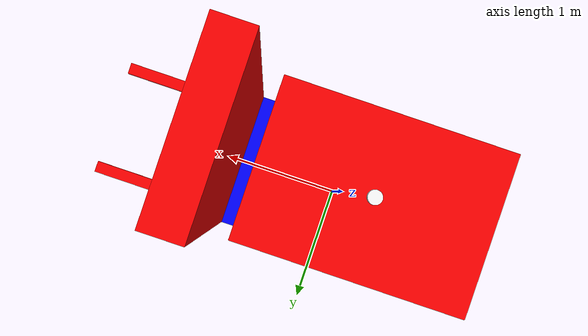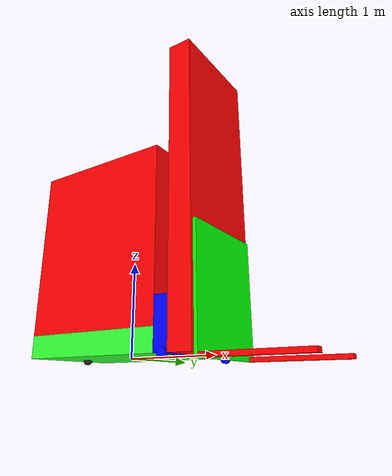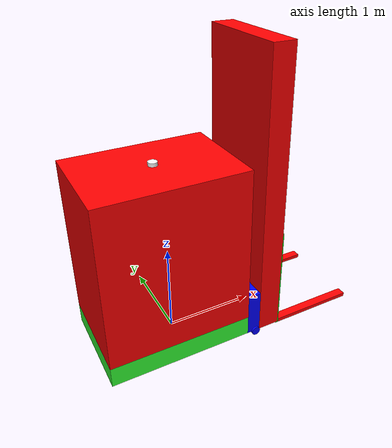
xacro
<?xml version="1.0"?>
<robot xmlns:xacro="http://www.ros.org/wiki/xacro" name="forklift_bot">

    <xacro:property name="height_of_chassis_from_ground_plane" value="0.122" />

    <xacro:property name="chassis_bottom_width" value="1.115" />
    <xacro:property name="chassis_bottom_length" value="1.59" />
    <xacro:property name="chassis_bottom_height" value="0.23" />

    <xacro:property name="chassis_top_width" value="1.115" />
    <xacro:property name="chassis_top_length" value="1.59" />
    <xacro:property name="chassis_top_height" value="1.808" />

    <xacro:property name="back_wheel_radius" value="0.05" />
    <xacro:property name="back_wheel_mass" value="0.1" />
    <xacro:property name="back_wheel_length_offset" value="${(chassis_bottom_length / 2)  * (2/3)}" />

    <xacro:property name="front_wheel_radius" value="0.05" />
    <xacro:property name="front_wheel_thickness" value="0.04" />
    <xacro:property name="front_wheel_mass" value="0.1" />
    <xacro:property name="front_wheel_length_offset" value="${(chassis_bottom_length / 2)}" />

    <xacro:property name="lift_body_connector_length" value="0.15" />
    <xacro:property name="lift_base_length" value="0.25" />
    <xacro:property name="lift_base_height" value="3.2" />

    <xacro:property name="lift_body_connector_length" value="0.15" />
    <xacro:property name="lift_body_connector_height" value="0.505" />

    <xacro:property name="fork_base_width" value="1.050" />
    <xacro:property name="fork_base_length" value="0.035" />
    <xacro:property name="fork_base_height" value="1.220" />
    <xacro:property name="fork_base_height_offset" value="${height_of_chassis_from_ground_plane - 0.076}" />

    <xacro:property name="fork_length" value="0.99" />
    <xacro:property name="fork_width" value="0.1" />
    <xacro:property name="fork_height" value="0.045" />
    <xacro:property name="fork_separation" value="0.850" /> <!-- separation (distance) between right fork and left fork -->

    <xacro:property name="laser_frame_radius" value="0.05" />
    <xacro:property name="laser_frame_length" value="0.04" />
    <xacro:property name="laser_frame_mass" value="0.01" />

    <xacro:property name="camera_size_x" value="0.010" />
    <xacro:property name="camera_size_y" value="0.03" />
    <xacro:property name="camera_size_z" value="0.03" />

    <xacro:property name="camera_image_width" value="640" />  <!-- Width of the RGB image published by the camera sensor -->
    <xacro:property name="camera_image_height" value="480" /> <!-- Height of the RGB image published by the camera sensor -->
    <xacro:property name="camera_image_clip_near" value="0.05" /> <!-- how close the camera can see -->
    <xacro:property name="camera_image_clip_far" value="8" /> <!-- how far the camera can see -->

    <xacro:property name="collision_detection_plugin_update_rate" value="30.0" />

    <xacro:include filename="inertial_macros.xacro"/>
    <xacro:include filename="gazebo_colors.xacro"/>
    <xacro:include filename="lidar.xacro"/>
    <!-- Uncomment this line, and comment the line below to switch between Depth Camera and a Regular Camera -->
    <xacro:include filename="depth_camera.xacro"/>

        <!-- BASE LINK -->

    <link name="base_link">
        <origin xyz="0 0 0" rpy="0 0 0"/>
    </link>

    <!-- CHASSIS LINK -->

    <joint name="chassis_joint" type="fixed">
        <parent link="base_link"/>
        <child link="chassis_bottom_link"/>
        <origin xyz="-0.1 0 0"/>
    </joint>

    <link name="chassis_bottom_link">
        <visual>
            <origin xyz="0 0 ${chassis_bottom_height / 2}" rpy="0 0 0"/>
            <geometry>
                <box size="${chassis_bottom_length} ${chassis_bottom_width} ${chassis_bottom_height}" />
            </geometry>
            <material name="green">
                <color rgba="0.2 1 0.2 1"/>
            </material>
        </visual>
        <collision name="chassis_bottom_link_collision">
            <origin xyz="0 0 ${chassis_bottom_height / 2}" rpy="0 0 0"/>
            <geometry>
                <box size="${chassis_bottom_length} ${chassis_bottom_width} ${chassis_bottom_height}" />
            </geometry>
        </collision>
        <xacro:inertial_box mass="30" x="${chassis_bottom_length}" y="${chassis_bottom_width}" z="${chassis_bottom_height}">
            <origin xyz="0 0 ${chassis_bottom_height / 2}" rpy="0 0 0"/>
        </xacro:inertial_box>
    </link>

    <gazebo reference="chassis_bottom_link">
        <material>Gazebo/White</material>
    </gazebo>

    <joint name="chassis_top_joint" type="fixed">
        <origin xyz="0 0 ${chassis_bottom_height}" rpy="0 0 0"/>
        <parent link="chassis_bottom_link"/>
        <child link="chassis_top_link"/>
    </joint>

    <link name="chassis_top_link">
        <visual>
            <origin xyz="0 0 ${chassis_top_height / 2}" rpy="0 0 0"/>
            <geometry>
                <box size="${chassis_top_length} ${chassis_top_width} ${chassis_top_height}" />
            </geometry>
            <material name="red">
                <color rgba="1 0 0 1"/>
            </material>
        </visual>
        <collision>
            <origin xyz="0 0 ${chassis_top_height / 2}" rpy="0 0 0"/>
            <geometry>
                <box size="${chassis_top_length} ${chassis_top_width} ${chassis_top_height}" />
            </geometry>
        </collision>
        <xacro:inertial_box mass="5" x="${chassis_top_length}" y="${chassis_top_width}" z="${chassis_top_height}">
            <origin xyz="0 0 ${chassis_top_height / 2}" rpy="0 0 0"/>
        </xacro:inertial_box>
    </link>

    <!-- LEFT WHEEL LINK -->

    <joint name="left_wheel_joint" type="continuous">
        <parent link="base_link"/>
        <child link="left_wheel"/>
        <origin xyz="${front_wheel_length_offset} ${(chassis_bottom_width / 2)} 0" rpy="-${pi/2} 0 0" />
        <axis xyz="0 0 1"/>
    </joint>

    <link name="left_wheel">
        <visual>
            <geometry>
                <cylinder radius="${front_wheel_radius}" length="${front_wheel_thickness}"/>
            </geometry>
            <material name="blue"/>
        </visual>
        <collision>
            <geometry>
                <cylinder radius="${front_wheel_radius}" length="${front_wheel_thickness}"/>
            </geometry>
        </collision>
        <xacro:inertial_cylinder mass="${front_wheel_mass}" length="${front_wheel_thickness}" radius="${front_wheel_radius}">
            <origin xyz="0 0 0" rpy="0 0 0"/>
        </xacro:inertial_cylinder>
    </link>

    <gazebo reference="left_wheel">
        <material>Gazebo/Blue</material>
    </gazebo>

    <!-- RIGHT FRONT WHEEL LINK -->

    <joint name="right_wheel_joint" type="continuous">
        <parent link="base_link"/>
        <child link="right_wheel"/>
        <origin xyz="${front_wheel_length_offset} -${(chassis_bottom_width / 2)} 0" rpy="${pi/2} 0 0" />
        <axis xyz="0 0 -1"/>
    </joint>

    <link name="right_wheel">
        <visual>
            <geometry>
                <cylinder radius="${front_wheel_radius}" length="${front_wheel_thickness}"/>
            </geometry>
            <material name="blue"/>
        </visual>
        <collision>
            <geometry>
                <cylinder radius="${front_wheel_radius}" length="${front_wheel_thickness}"/>
            </geometry>
        </collision>
        <xacro:inertial_cylinder mass="${front_wheel_mass}" length="${front_wheel_thickness}" radius="${front_wheel_radius}">
            <origin xyz="0 0 0" rpy="0 0 0"/>
        </xacro:inertial_cylinder>
    </link>

    <gazebo reference="right_wheel">
        <material>Gazebo/Blue</material>
    </gazebo>

    <!-- CASTER WHEEL LINK -->

    <joint name="caster_wheel_joint" type="fixed">
        <parent link="chassis_bottom_link"/>
        <child link="caster_wheel"/>
        <origin xyz="-${back_wheel_length_offset} 0 0" />
    </joint>

    <link name="caster_wheel">
        <visual>
            <geometry>
                <sphere radius="${back_wheel_radius}"/>
            </geometry>
            <material name="black"/>
        </visual>
        <collision>
            <geometry>
                <sphere radius="${back_wheel_radius}"/>
            </geometry>
        </collision>
        <xacro:inertial_sphere mass="${back_wheel_mass}" radius="${back_wheel_radius}">
            <origin xyz="0 0 0" rpy="0 0 0"/>
        </xacro:inertial_sphere>
    </link>

    <!-- FRICTION VALUES -->
    <gazebo reference="caster_wheel">
        <material>Gazebo/Black</material>
        <mu>0</mu>
        <mu2>0</mu2>
        <slip1>1</slip1>
        <slip2>1</slip2>
        <kp  value="10000000.0" />
        <kd  value="1.0" />
    </gazebo>

    <gazebo reference="right_wheel">
        <material>Gazebo/Black</material>
        <mu1 value="100.0" />
        <mu2 value="100.0" />
        <kp  value="10000000.0" />
        <kd  value="1.0" />
    </gazebo>

    <gazebo reference="left_wheel">
        <material>Gazebo/Black</material>
        <mu1 value="100.0" />
        <mu2 value="100.0" />
        <kp  value="10000000.0" />
        <kd  value="1.0" />
    </gazebo>

     <!-- LIFT BASE LINK-->
    <link name="lift_base_link">
        <visual>
            <origin xyz="0 0 ${lift_base_height / 2}" rpy="0 0 0"/>
            <geometry>
                <box size="${lift_base_length} ${chassis_bottom_width} ${lift_base_height}"/>
            </geometry>
            <material name="red">
                <color rgba="1 0 0 1"/>
            </material>
        </visual>
        <collision>
            <origin xyz="0 0 ${lift_base_height / 2}" rpy="0 0 0"/>
            <geometry>
                <box size="${lift_base_length} ${chassis_bottom_width} ${lift_base_height}"/>
            </geometry>
            <!-- Added by me (surface tag) to prevent fork falling down issue -->
        </collision>
        <xacro:inertial_box mass="${0.001}" x="${lift_base_length}" y="${chassis_bottom_width}" z="${lift_base_height}" >
            <origin xyz="0 0 ${lift_base_height / 2}" rpy="0 0 0"/>
        </xacro:inertial_box>
    </link>

    <joint name="lift_base_joint" type="fixed">
        <parent link="chassis_bottom_link"/>
        <child link="lift_base_link"/>
        <origin xyz="${(chassis_bottom_length / 2) + lift_body_connector_length + (lift_base_length / 2)} 0 0" rpy="0 0 0" />
    </joint>

    <!-- LIFT BODY CONNECTOR LINK -->
    <link name="lift_body_connector_link">
        <visual>
            <origin xyz="0 0 ${(lift_body_connector_height / 2)}" rpy="0 0 0"/>
            <geometry>
                <box size="${lift_body_connector_length} ${chassis_bottom_width} ${lift_body_connector_height}"/>
            </geometry>
            <material name="blue">
                <color rgba="0 0 1 1"/>
            </material>
        </visual>
        <collision>
            <origin xyz="0 0 ${(lift_body_connector_height / 2)}" rpy="0 0 0"/>
            <geometry>
                <box size="${lift_body_connector_length} ${chassis_bottom_width} ${lift_body_connector_height}"/>
            </geometry>
        </collision>
        <xacro:inertial_box mass="${0.001}" x="${lift_body_connector_length}" y="${chassis_bottom_width}" z="${lift_body_connector_height}" >
            <origin xyz="0 0 ${(lift_body_connector_height / 2)}" rpy="0 0 0"/>
        </xacro:inertial_box>
    </link>

    <joint name="lift_body_connector_joint" type="fixed">
        <parent link="chassis_bottom_link"/>
        <child link="lift_body_connector_link"/>
        <origin xyz="${(chassis_bottom_length / 2) + (lift_body_connector_length / 2)} 0 0" rpy="0 0 0" />
    </joint>

    <!-- FORK BASE LINK -->
    <link name="fork_base_link">
        <visual>
            <origin xyz="0 0 ${(fork_base_height / 2)}" rpy="0 0 0"/>
            <geometry>
                <box size="${fork_base_length} ${fork_base_width} ${fork_base_height}"/>
            </geometry>
            <material name="green">
                <color rgba="0 1 0 1"/>
            </material>
        </visual>
        <collision>
            <origin xyz="0 0 ${(fork_base_height / 2)}" rpy="0 0 0"/>
            <geometry>
                <box size="${fork_base_length} ${fork_base_width} ${fork_base_height}"/>
            </geometry>
            <!-- Added by me (surface tag) to prevent fork falling down issue -->
        </collision>
        <xacro:inertial_box mass="0.001" x="${fork_base_length}" y="${fork_base_width}" z="${fork_base_height}" >
            <origin xyz="0 0 ${(fork_base_height / 2)}" rpy="0 0 0"/>
        </xacro:inertial_box>
    </link>

    <joint name="fork_base_joint" type="prismatic">
        <parent link="lift_base_link"/>
        <child link="fork_base_link"/>
        <axis xyz="0 0 1"/>
        <limit lower=" -${height_of_chassis_from_ground_plane - 0.015}" upper="${lift_base_height + fork_base_height_offset}" velocity="0.5" effort="1000.0"/> <!-- TODO: set limits -->
        <origin xyz="${(lift_base_length / 2) + (fork_base_length / 2)} 0 -${fork_base_height_offset}" rpy="0 0 0"/>
    </joint>

    <!-- RIGHT FORK LINK -->
    <link name="right_fork_link">
        <visual>
            <origin xyz="0 0 ${(fork_height / 2)}" rpy="0 0 0"/>
            <geometry>
                <box size="${fork_length} ${fork_width} ${fork_height}"/>
            </geometry>
            <material name="red">
                <color rgba="1 0 0 1"/>
            </material>
        </visual>
        <collision>
            <origin xyz="0 0 ${(fork_height / 2)}" rpy="0 0 0"/>
            <geometry>
                <box size="${fork_length} ${fork_width} ${fork_height}"/>
            </geometry>
        </collision>
        <xacro:inertial_box mass="0.001" x="${fork_length}" y="${fork_width}" z="${fork_height}" >
            <origin xyz="0 0 ${(fork_height / 2)}" rpy="0 0 0"/>
        </xacro:inertial_box>
    </link>

    <joint name="right_fork_joint" type="fixed">
        <parent link="fork_base_link"/>
        <child link="right_fork_link"/>
        <origin xyz="${(fork_base_length / 2) + (fork_length / 2)} ${(fork_separation / 2) + (fork_width / 2)} 0" rpy="0 0 0"/>
    </joint>

    <!-- LEFT FORK LINK -->
    <link name="left_fork_link">
        <visual>
            <origin xyz="0 0 ${(fork_height / 2)}" rpy="0 0 0"/>
            <geometry>
                <box size="${fork_length} ${fork_width} ${fork_height}"/>
            </geometry>
            <material name="red">
                <color rgba="1 0 0 1"/>
            </material>
        </visual>
        <collision>
            <origin xyz="0 0 ${(fork_height / 2)}" rpy="0 0 0"/>
            <geometry>
                <box size="${fork_length} ${fork_width} ${fork_height}"/>
            </geometry>
        </collision>
        <xacro:inertial_box mass="0.001" x="${fork_length}" y="${fork_width}" z="${fork_height}" >
            <origin xyz="0 0 ${(fork_height / 2)}" rpy="0 0 0"/>
        </xacro:inertial_box>
    </link>

    <joint name="left_fork_joint" type="fixed">
        <parent link="fork_base_link"/>
        <child link="left_fork_link"/>
        <origin xyz="${(fork_base_length / 2) + (fork_length / 2)} -${(fork_separation / 2) + (fork_width / 2)} 0" rpy="0 0 0"/>
    </joint>

    <!-- Setup ROS_CONTROL and transmission tags for the forklift robot-->
    <xacro:include filename="ros2_control.xacro"/>
    <xacro:include filename="gazebo.xacro"/>

    <!-- Setup Collision Detection Plugin for the forklift robot -->
    <xacro:include filename="ros_gazebo_collision_detection_plugin.xacro"/>

    <!-- Setup Gazebo Gravity Compensation Plugin for the forklift robot -->

</robot>

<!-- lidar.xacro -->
<robot xmlns:xacro="http://www.ros.org/wiki/xacro" name="forklift_bot">

    <!-- Add link and a joint for the Lidar -->
    <link name="laser_frame_link">
        <visual>
            <origin xyz="0 0 0" rpy="0 0 0"/>
            <geometry>
                <cylinder radius="${laser_frame_radius}" length="${laser_frame_length}"/>
            </geometry>
            <material name="white">
                <color rgba="1 1 1 1"/>
            </material>
        </visual>
        <collision>
            <origin xyz="0 0 0" rpy="0 0 0"/>
            <geometry>
                <cylinder radius="${laser_frame_radius}" length="laser_frame_length"/>
            </geometry>
        </collision>
        <xacro:inertial_cylinder mass="${laser_frame_mass}" length="${laser_frame_length}" radius="${laser_frame_radius}">
            <origin xyz="0 0 0" rpy="0 0 0"/>
        </xacro:inertial_cylinder>
    </link>

    <joint name="laser_frame_joint" type="fixed">
        <parent link="chassis_bottom_link"/>
        <child link="laser_frame_link"/>
        <origin xyz=" 0 0 ${chassis_bottom_height + chassis_top_height + (laser_frame_length / 2)}" rpy="0 0 0" />
        <axis xyz="1 1 1"/>
    </joint>

    <!-- Gazebo Plugin for Lidar -->
    <gazebo reference="laser_frame_link">
        <sensor name="laser" type="ray">
            <pose> 0 0 0 0 0 0 </pose>
            <visualize>true</visualize>
            <update_rate>10</update_rate>
            <ray>
                <scan>
                    <horizontal>
                        <samples>360</samples>
                        <min_angle>-3.14</min_angle>
                        <max_angle>3.14</max_angle>
                    </horizontal>
                </scan>
                <range>
                    <min>0.3</min>
                    <max>12</max>
                </range>
            </ray>
            <plugin name="laser_controller" filename="libgazebo_ros_ray_sensor.so">
                <ros>
                    <argument>~/out:=scan</argument>
                </ros>
                <output_type>sensor_msgs/LaserScan</output_type>
                <frame_name>laser_frame_link</frame_name>
            </plugin>
        </sensor>
    </gazebo>

</robot>

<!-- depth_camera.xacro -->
<robot xmlns:xacro="http://www.ros.org/wiki/xacro" >

    <!-- Add link and a joint for the Camera -->
    <link name="camera_link">
        <visual>
            <origin xyz="${camera_size_x / 2} ${camera_size_y / 2} ${camera_size_z / 2}" rpy="0 0 0"/>
            <geometry>
                <box size="${camera_size_x} ${camera_size_y} ${camera_size_z}"/>
            </geometry>
            <material name="white">
                <color rgba="1 1 1 1"/>
            </material>
        </visual>
    </link>

    <joint name="camera_joint" type="fixed">
        <parent link="fork_base_link"/>
        <child link="camera_link"/>
        <origin xyz="${fork_base_length / 2} ${fork_base_length / 2} ${fork_base_length / 2}" rpy="0 0 0"/>
    </joint>

    <!-- Convert ros coordinate system to generally used image coordinate system -->
    <link name="camera_link_optical"></link>

    <joint name="camera_optical_joint" type="fixed">
        <parent link="camera_link"/>
        <child link="camera_link_optical"/>
        <origin xyz="0 0 0" rpy="${-pi / 2} 0 ${-pi / 2}"/>
    </joint>

    <!-- Gazebo Plugin for Camera -->
    <gazebo reference="camera_link">
        <sensor name="camera" type="depth">
            <pose> 0 0 0 0 0 0 </pose>
            <visualize>true</visualize>
            <update_rate>10</update_rate>
            <camera>
                <horizontal_fov>1.089</horizontal_fov>
                <image>
                    <format>B8G8R8</format>
                    <width>${camera_image_width}</width> <!-- Width of the RGB image published by the camera sensor -->
                    <height>${camera_image_height}</height> <!-- Height of the RGB image published by the camera sensor -->
                </image>
                <clip>
                    <near>${camera_image_clip_near}</near> <!-- how close the camera can see -->
                    <far>${camera_image_clip_far}</far> <!-- how far the camera can see -->
                </clip>
            </camera>
            <plugin name="camera_controller" filename="libgazebo_ros_camera.so">
                <frame_name>camera_link_optical</frame_name>
                <min_depth>0.1</min_depth>
                <max_depth>100.0</max_depth>
            </plugin>
        </sensor>
    </gazebo>

</robot>
